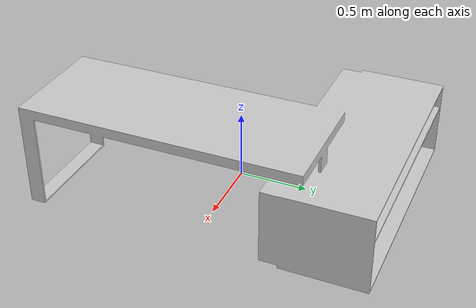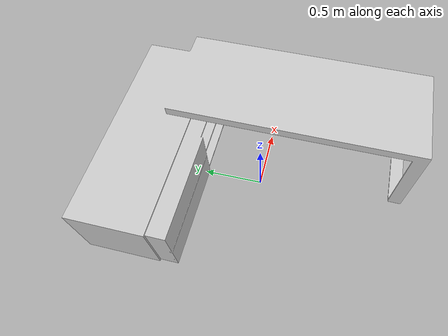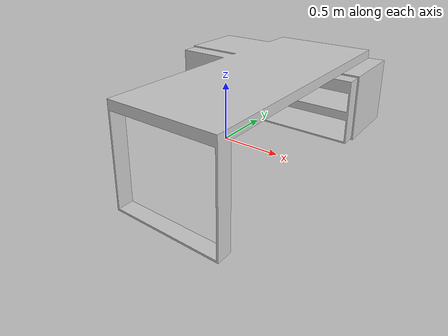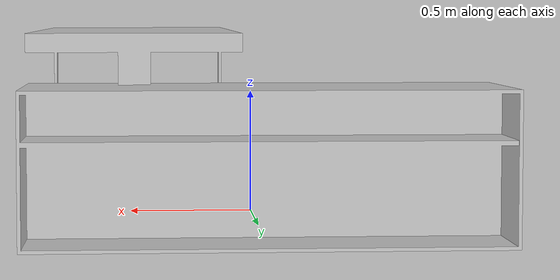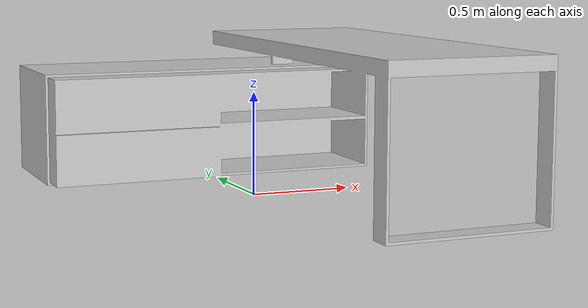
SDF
<?xml version="1.0" ?>
<sdf version="1.9">
  <model name="table">
    <static>true</static>
    <link name="link">
      <visual name="visual">
        <geometry>
          <mesh>
            <uri>meshes/table.obj</uri>
          </mesh>
        </geometry>
        <material>
          <diffuse>0.8 0.8 0.8 1</diffuse>
          <specular>0.2 0.2 0.2 1</specular>
          <pbr>
            <metal>
              <metalness>0.0</metalness>
              <roughness>0.4</roughness>
            </metal>
          </pbr>
        </material>
      </visual>
      <collision name="collision">
        <geometry>
          <mesh>
            <uri>meshes/table.obj</uri>
          </mesh>
        </geometry>
      </collision>
    </link>
  </model>
</sdf>
